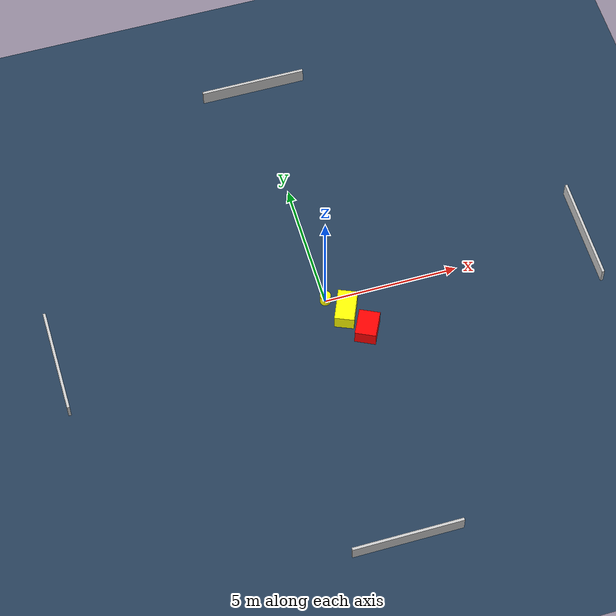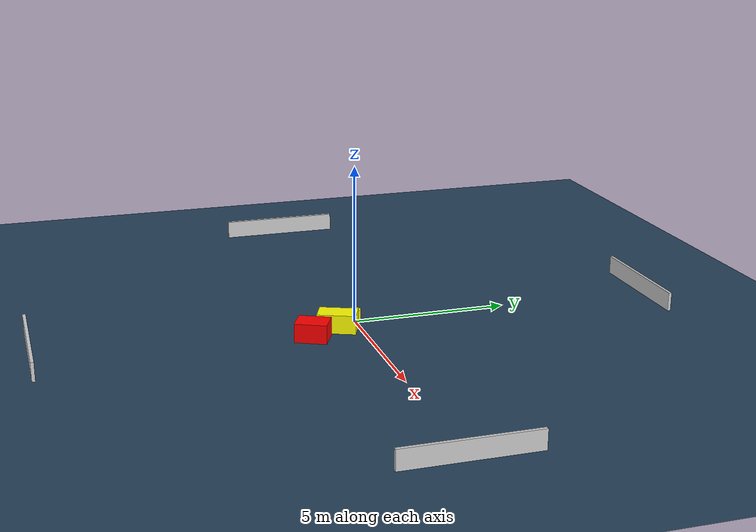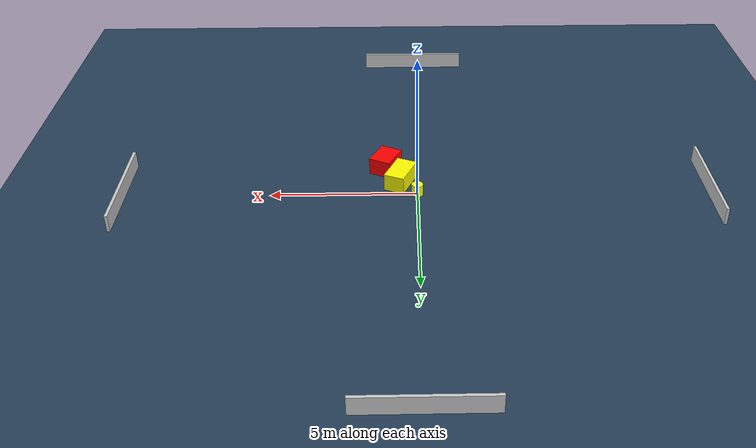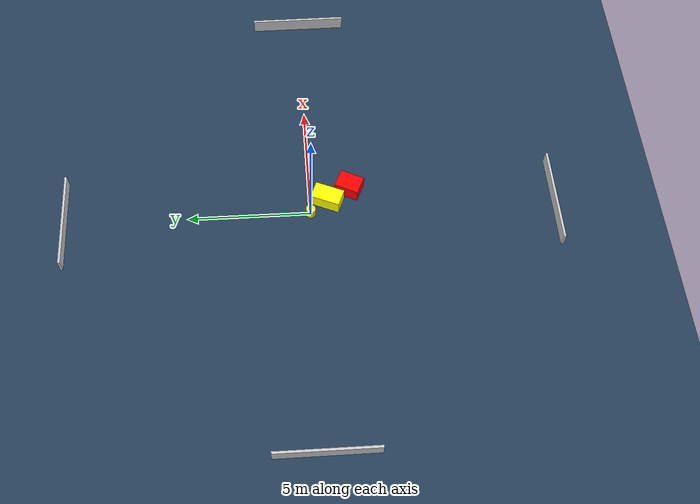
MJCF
<?xml version="1.0" ?>
<mujoco model="generated_environment">
  <option timestep="0.01" integrator="RK4" cone="elliptic"/>
  <default>
    <geom density="1"/>
  </default>
  <asset>
    <texture builtin="gradient" height="3072" name="skybox" rgb1="0.3 0.5 0.7" rgb2="0 0 0" type="skybox" width="512"/>
    <texture builtin="checker" height="300" name="groundplane" rgb1="0.2 0.3 0.4" rgb2="0.1 0.2 0.3" type="2d" width="300"/>
    <material name="groundplane" reflectance="0.2" texrepeat="5 5" texture="groundplane"/>
  </asset>
  <worldbody>
    <light dir="0 0 -1" directional="true" pos="0 0 1.5"/>
    <geom condim="3" friction="0.5 0.005 0.001" material="groundplane" name="floor" pos="0 0 0" size="0 0 0.05" type="plane"/>
    <body name="walls">
      <geom name="wall_1" condim="4" pos="-10.0 0.0 0.3" rgba="0.800000011920929 0.800000011920929 0.800000011920929 1.0" size="0.05 2.0 0.3" type="box"/>
      <geom name="wall_2" condim="4" pos="10.0 0.0 0.3" rgba="0.800000011920929 0.800000011920929 0.800000011920929 1.0" size="0.05 2.0 0.3" type="box"/>
      <geom name="wall_3" condim="4" pos="0.0 -10.0 0.3" rgba="0.800000011920929 0.800000011920929 0.800000011920929 1.0" size="2.0 0.05 0.3" type="box"/>
      <geom name="wall_4" condim="4" pos="0.0 10.0 0.3" rgba="0.800000011920929 0.800000011920929 0.800000011920929 1.0" size="2.0 0.05 0.3" type="box"/>
    </body>
    <body name="robot">
      <joint name="joint_x" type="slide" pos="0 0 0" axis="1 0 0"/>
      <joint name="joint_y" type="slide" pos="0 0 0" axis="0 1 0"/>
      <geom name="robot" type="cylinder" pos="0.0 0.0 0.2" size="0.2 0.2 0.0" mass="5.0" friction="1.0 0.005 0.0001" condim="4" rgba="1.0 1.0 0.0 1.0"/>
    </body>
    <body name="obstacle_1_movable">
      <geom name="obstacle_1_movable" condim="4" pos="0.5693467934312606 -0.7122626710169732 0.3" euler="0 0 156.94204893560456" friction="0.0 0.005 0.001" rgba="1.0 1.0 0.0 1.0" size="0.36071094248575364 0.6079146220505132 0.3" type="box" mass="0.1"/>
      <joint type="free"/>
    </body>
    <body name="obstacle_2_static">
      <geom name="obstacle_2_static" condim="4" pos="1.0959274905913141 -1.6486210345347216 0.3" euler="0 0 333.83951346771124" friction="0.0 0.005 0.001" rgba="1.0 0.0 0.0 1.0" size="0.3867234127145295 0.5030156061052256 0.3" type="box"/>
    </body>
  </worldbody>
  <actuator>
    <motor name="actuator_x" joint="joint_x" gear="1" ctrlrange="-1 1"/>
    <motor name="actuator_y" joint="joint_y" gear="1" ctrlrange="-1 1"/>
  </actuator>
</mujoco>
